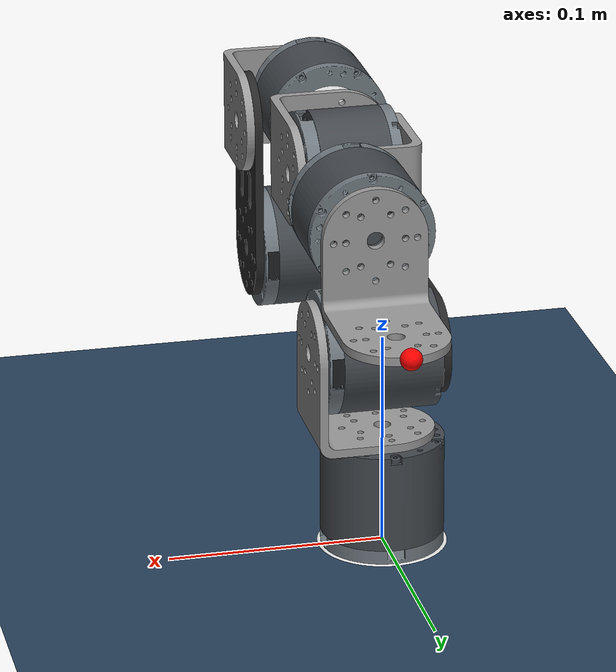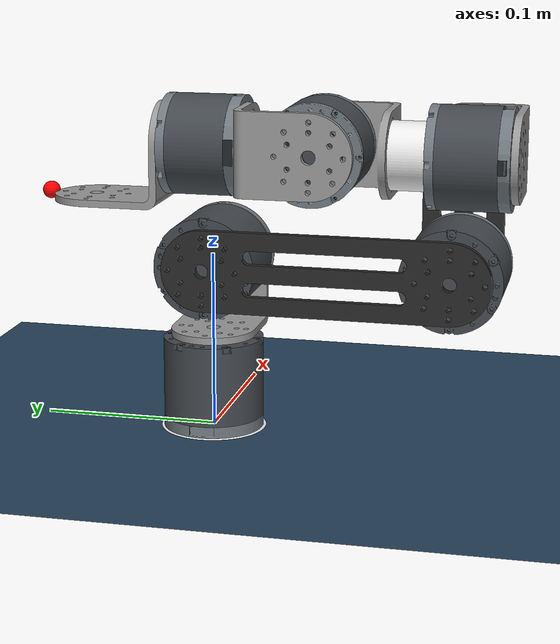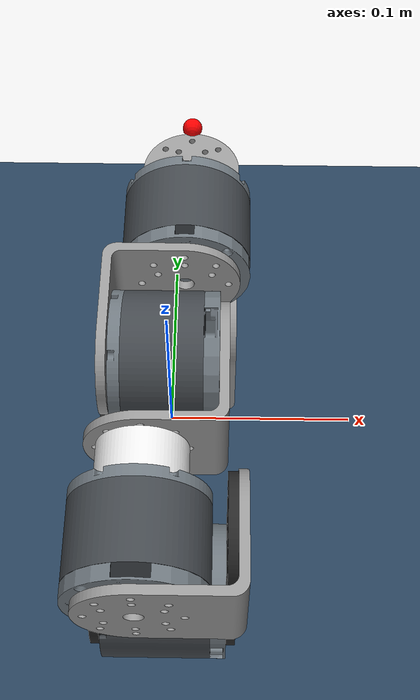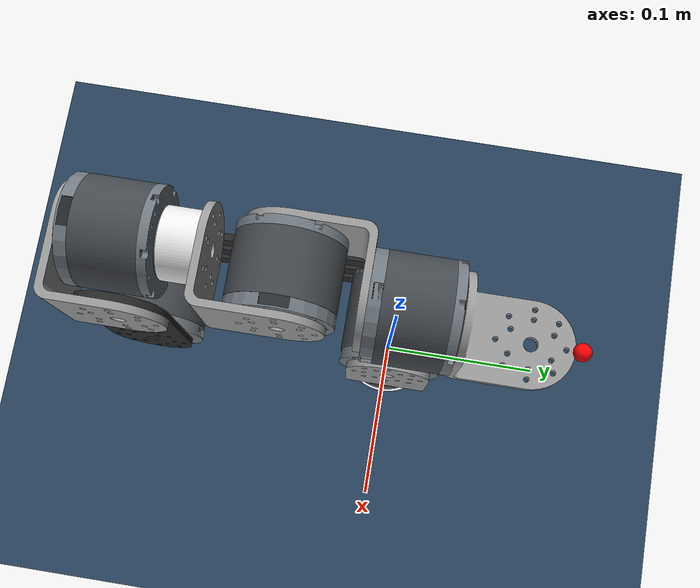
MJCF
<mujoco model="scene">
    <include file="robot.xml" />

    <option gravity="0 0 0"/>

    <visual>
        <headlight diffuse="0.6 0.6 0.6" ambient="0.3 0.3 0.3" specular="0 0 0" />
        <rgba haze="0.15 0.25 0.35 1" />
        <global azimuth="160" elevation="-20" />
    </visual>

    <asset>
        <texture type="skybox" builtin="gradient" rgb1="0.3 0.5 0.7" rgb2="0 0 0" width="512"
            height="3072" />
        <texture type="2d" name="groundplane" builtin="checker" mark="edge" rgb1="0.2 0.3 0.4"
            rgb2="0.1 0.2 0.3"
            markrgb="0.8 0.8 0.8" width="300" height="300" />
        <material name="groundplane" texture="groundplane" texuniform="true" texrepeat="5 5"
            reflectance="0.2" />
    </asset>

    <worldbody>
        <light pos="0 0 3.5" dir="0 0 -1" directional="true" />
        <geom name="floor" size="0 0 0.05" pos="0 0 0" type="plane" material="groundplane" />
    </worldbody>
</mujoco>

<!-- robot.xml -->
<!-- Generated using onshape-to-robot -->
<!-- Onshape https://cad.onshape.com/documents/bf6e0747e0cd899219ac657c/w/82278f0897f383a99388b3fa/e/2e25f6a46f62bf396b7a318e -->
<mujoco model="pydmL20">
  <compiler angle="radian" meshdir="assets" autolimits="true"/>
  <default>
    <default class="pydmL20">
      <joint frictionloss="0.1" armature="0.005"/>
      <position kp="500" dampratio="1"/>
      <default class="visual">
        <geom type="mesh" contype="0" conaffinity="0" group="2"/>
      </default>
      <default class="collision">
        <geom group="3"/>
      </default>
    </default>
  </default>
  <worldbody>
    <body name="target" pos="0 0 0">
      <geom type="sphere" size="0.005" rgba="0 0.8 0 1"/>
    </body>
    <!-- Link broad -->
    <body name="broad" pos="0 0 0" quat="1 0 0 0" childclass="pydmL20">
      <inertial pos="-1.5743e-08 -8.67484e-05 0.0242348" mass="1.04351" fullinertia="0.00076785 0.000766062 0.000896953 -1.45834e-07 -3.03e-10 -1.87157e-06"/>
      <!-- Part dm_4340_motor -->
      <geom type="mesh" class="visual" pos="0 0 0.05325" quat="0.707107 -0.707107 0 0" mesh="dm_4340_motor" material="dm_4340_motor_material"/>
      <geom type="mesh" class="collision" pos="0 0 0.05325" quat="0.707107 -0.707107 0 0" mesh="dm_4340_motor" material="dm_4340_motor_material"/>
      <!-- Part broad -->
      <geom type="mesh" class="visual" pos="-0.0285 -0.0285 -0.004" quat="0.707107 -0 0.707107 -0" mesh="broad" material="broad_material"/>
      <geom type="mesh" class="collision" pos="-0.0285 -0.0285 -0.004" quat="0.707107 -0 0.707107 -0" mesh="broad" material="broad_material"/>
      <!-- Part dm_4340_cover -->
      <geom type="mesh" class="visual" pos="0 0 0.05325" quat="0.707107 -0.707107 0 0" mesh="dm_4340_cover" material="dm_4340_cover_material"/>
      <geom type="mesh" class="collision" pos="0 0 0.05325" quat="0.707107 -0.707107 0 0" mesh="dm_4340_cover" material="dm_4340_cover_material"/>
      <!-- Link l_link -->
      <body name="l_link" pos="0 0 0.0533" quat="0 -0.707107 0.707107 -0">
        <!-- Joint from broad to l_link -->
        <joint axis="0 0 1" name="base" type="hinge" range="-3.141592653589793 3.141592653589793"/>
        <inertial pos="-1.5575e-08 -0.00424509 -0.0387974" mass="1.05474" fullinertia="0.000581624 0.000537958 0.000469188 -3.36e-10 1.45774e-07 3.48355e-05"/>
        <!-- Part l_link -->
        <geom type="mesh" class="visual" pos="-0.0285 -0.0305 -0.004" quat="0.5 -0.5 -0.5 -0.5" mesh="l_link" material="l_link_material"/>
        <geom type="mesh" class="collision" pos="-0.0285 -0.0305 -0.004" quat="0.5 -0.5 -0.5 -0.5" mesh="l_link" material="l_link_material"/>
        <!-- Part dm_4340_motor_2 -->
        <geom type="mesh" class="visual" pos="0 0.02275 -0.0425" quat="0 -1 -0 -0" mesh="dm_4340_motor" material="dm_4340_motor_material"/>
        <geom type="mesh" class="collision" pos="0 0.02275 -0.0425" quat="0 -1 -0 -0" mesh="dm_4340_motor" material="dm_4340_motor_material"/>
        <!-- Part dm_4340_cover_2 -->
        <geom type="mesh" class="visual" pos="0 0.02275 -0.0425" quat="0 -1 -0 -0" mesh="dm_4340_cover" material="dm_4340_cover_material"/>
        <geom type="mesh" class="collision" pos="0 0.02275 -0.0425" quat="0 -1 -0 -0" mesh="dm_4340_cover" material="dm_4340_cover_material"/>
        <!-- Link long_link -->
        <body name="long_link" pos="0 0.0228 -0.0425" quat="0.707107 0.707107 -0 -0">
          <!-- Joint from l_link to long_link -->
          <joint axis="0 0 1" name="shoulder" type="hinge" range="-3.141592653589793 0.0"/>
          <inertial pos="0.0685 -0 -0.002" mass="0.0398304" fullinertia="7.58759e-06 0.000113033 0.000120515 -0 0 0"/>
          <!-- Part long_link -->
          <geom type="mesh" class="visual" pos="0.1655 0.0285 0" quat="0 0 0 -1" mesh="long_link" material="long_link_material"/>
          <geom type="mesh" class="collision" pos="0.1655 0.0285 0" quat="0 0 0 -1" mesh="long_link" material="long_link_material"/>
          <!-- Link dm_4340_motor -->
          <body name="dm_4340_motor" pos="0.137 -0 0" quat="0 -0 1 0">
            <!-- Joint from long_link to dm_4340_motor -->
            <joint axis="0 0 1" name="elbow" type="hinge" range="-3.1415926710415256 0.017453275068210792"/>
            <inertial pos="-0.00412952 -0.0331055 -0.0241223" mass="1.85612" fullinertia="0.00281273 0.000886552 0.00272285 -0.000244665 -1.17356e-05 2.97086e-05"/>
            <!-- Part l_link_2 -->
            <geom type="mesh" class="visual" pos="-0.0305 -0.0935 -0.0573" quat="0.707107 -6.17e-09 0.707107 6.17e-09" mesh="l_link" material="l_link_material"/>
            <geom type="mesh" class="collision" pos="-0.0305 -0.0935 -0.0573" quat="0.707107 -6.17e-09 0.707107 6.17e-09" mesh="l_link" material="l_link_material"/>
            <!-- Part dm_4340_cover_3 -->
            <geom type="mesh" class="visual" pos="-0 0 -5e-05" quat="0.707107 -0.707107 -6.171e-09 6.171e-09" mesh="dm_4340_cover" material="dm_4340_cover_material"/>
            <geom type="mesh" class="collision" pos="-0 0 -5e-05" quat="0.707107 -0.707107 -6.171e-09 6.171e-09" mesh="dm_4340_cover" material="dm_4340_cover_material"/>
            <!-- Part short_link -->
            <geom type="mesh" class="visual" pos="0.0285 -0.0935 -0.0533" quat="0.707107 0 -0 0.707107" mesh="short_link" material="short_link_material"/>
            <geom type="mesh" class="collision" pos="0.0285 -0.0935 -0.0533" quat="0.707107 0 -0 0.707107" mesh="short_link" material="short_link_material"/>
            <!-- Part dm_4310_cover -->
            <geom type="mesh" class="visual" pos="0.015 -0.0650125 -0.0189736" quat="0.5 -0.5 0.5 0.5" mesh="dm_4310_cover" material="dm_4310_cover_material"/>
            <geom type="mesh" class="collision" pos="0.015 -0.0650125 -0.0189736" quat="0.5 -0.5 0.5 0.5" mesh="dm_4310_cover" material="dm_4310_cover_material"/>
            <!-- Part dm_4340_motor_3 -->
            <geom type="mesh" class="visual" pos="-0 0 -5e-05" quat="0.707107 -0.707107 -6.171e-09 6.171e-09" mesh="dm_4340_motor" material="dm_4340_motor_material"/>
            <geom type="mesh" class="collision" pos="-0 0 -5e-05" quat="0.707107 -0.707107 -6.171e-09 6.171e-09" mesh="dm_4340_motor" material="dm_4340_motor_material"/>
            <!-- Part dm_4310_adapter -->
            <geom type="mesh" class="visual" pos="0.015 -0.0650125 -0.0189736" quat="0.5 -0.5 0.5 0.5" mesh="dm_4310_adapter" material="dm_4310_adapter_material"/>
            <geom type="mesh" class="collision" pos="0.015 -0.0650125 -0.0189736" quat="0.5 -0.5 0.5 0.5" mesh="dm_4310_adapter" material="dm_4310_adapter_material"/>
            <!-- Part dm_4310_motor -->
            <geom type="mesh" class="visual" pos="0.015 -0.0650125 -0.0189736" quat="0.5 -0.5 0.5 0.5" mesh="dm_4310_motor" material="dm_4310_motor_material"/>
            <geom type="mesh" class="collision" pos="0.015 -0.0650125 -0.0189736" quat="0.5 -0.5 0.5 0.5" mesh="dm_4310_motor" material="dm_4310_motor_material"/>
            <!-- Link l_link_2 -->
            <body name="l_link_2" pos="0.0155 -0.0650125 -0.0189736" quat="6.17e-09 0.707107 6.17e-09 -0.707107">
              <!-- Joint from dm_4340_motor to l_link_2 -->
              <joint axis="0 0 1" name="wrist_1" type="hinge" range="-3.1415926535892646 3.1415926535903216"/>
              <inertial pos="0.00801772 -9.94832e-06 -0.0568761" mass="0.955991" fullinertia="0.000544026 0.000536297 0.000371349 -2.4498e-08 -9.42344e-06 1.00842e-07"/>
              <!-- Part dm_4310_cover_2 -->
              <geom type="mesh" class="visual" pos="-0.015 -1.24934e-05 -0.0623264" quat="0.5 -0.5 -0.5 -0.5" mesh="dm_4310_cover" material="dm_4310_cover_material"/>
              <geom type="mesh" class="collision" pos="-0.015 -1.24934e-05 -0.0623264" quat="0.5 -0.5 -0.5 -0.5" mesh="dm_4310_cover" material="dm_4310_cover_material"/>
              <!-- Part l_link_3 -->
              <geom type="mesh" class="visual" pos="0.0305 -0.0285 -0.024" quat="0.707107 0 -0.707107 0" mesh="l_link" material="l_link_material"/>
              <geom type="mesh" class="collision" pos="0.0305 -0.0285 -0.024" quat="0.707107 0 -0.707107 0" mesh="l_link" material="l_link_material"/>
              <!-- Part dm_4310_adapter_2 -->
              <geom type="mesh" class="visual" pos="-0.015 -1.24934e-05 -0.0623264" quat="0.5 -0.5 -0.5 -0.5" mesh="dm_4310_adapter" material="dm_4310_adapter_material"/>
              <geom type="mesh" class="collision" pos="-0.015 -1.24934e-05 -0.0623264" quat="0.5 -0.5 -0.5 -0.5" mesh="dm_4310_adapter" material="dm_4310_adapter_material"/>
              <!-- Part link_cylinder -->
              <geom type="mesh" class="visual" pos="-0.0285 0.0305 0" quat="0.5 0.5 0.5 -0.5" mesh="link_cylinder" material="link_cylinder_material"/>
              <geom type="mesh" class="collision" pos="-0.0285 0.0305 0" quat="0.5 0.5 0.5 -0.5" mesh="link_cylinder" material="link_cylinder_material"/>
              <!-- Part dm_4310_motor_2 -->
              <geom type="mesh" class="visual" pos="-0.015 -1.24934e-05 -0.0623264" quat="0.5 -0.5 -0.5 -0.5" mesh="dm_4310_motor" material="dm_4310_motor_material"/>
              <geom type="mesh" class="collision" pos="-0.015 -1.24934e-05 -0.0623264" quat="0.5 -0.5 -0.5 -0.5" mesh="dm_4310_motor" material="dm_4310_motor_material"/>
              <!-- Link l_link_3 -->
              <body name="l_link_3" pos="-0.0155 -1.24934e-05 -0.0623264" quat="0.707107 -0 0.707107 0">
                <!-- Joint from l_link_2 to l_link_3 -->
                <joint axis="0 0 1" name="wrist_2" type="hinge" range="-1.7453292519943562 1.7453292519943029"/>
                <inertial pos="0.0601106 -0.000257348 0.0270729" mass="0.930808" fullinertia="0.000445855 0.000658828 0.000591597 -4.67297e-07 -0.000143417 9.75252e-07"/>
                <!-- Part l_link_4 -->
                <geom type="mesh" class="visual" pos="0.0385 -0.0285 0" quat="1 0 -0 -0" mesh="l_link" material="l_link_material"/>
                <geom type="mesh" class="collision" pos="0.0385 -0.0285 0" quat="1 0 -0 -0" mesh="l_link" material="l_link_material"/>
                <!-- Part dm_4310_motor_3 -->
                <geom type="mesh" class="visual" pos="0.088 -0.000173555 0.0305125" quat="0 -0.707107 0.707107 -0" mesh="dm_4310_motor" material="dm_4310_motor_material"/>
                <geom type="mesh" class="collision" pos="0.088 -0.000173555 0.0305125" quat="0 -0.707107 0.707107 -0" mesh="dm_4310_motor" material="dm_4310_motor_material"/>
                <!-- Part dm_4310_adapter_3 -->
                <geom type="mesh" class="visual" pos="0.088 -0.000173555 0.0305125" quat="0 -0.707107 0.707107 -0" mesh="dm_4310_adapter" material="dm_4310_adapter_material"/>
                <geom type="mesh" class="collision" pos="0.088 -0.000173555 0.0305125" quat="0 -0.707107 0.707107 -0" mesh="dm_4310_adapter" material="dm_4310_adapter_material"/>
                <!-- Part dm_4310_cover_3 -->
                <geom type="mesh" class="visual" pos="0.088 -0.000173555 0.0305125" quat="0 -0.707107 0.707107 -0" mesh="dm_4310_cover" material="dm_4310_cover_material"/>
                <geom type="mesh" class="collision" pos="0.088 -0.000173555 0.0305125" quat="0 -0.707107 0.707107 -0" mesh="dm_4310_cover" material="dm_4310_cover_material"/>
                <!-- Link l_link_4 -->
                <body name="l_link_4" pos="0.0885 -0.000173555 0.0305125" quat="0.707107 -0 -0.707107 0">
                  <site name="ee" pos="0 -0.03 -0.07" size="0.005" rgba="1 0 0 1"/>
                  <!-- Joint from l_link_3 to l_link_4 -->
                  <joint axis="0 0 1" name="wrist_3" type="hinge" range="-3.1415926535897825 3.1415926535898038"/>
                  <inertial pos="-0 -0.0205837 -0.0179579" mass="0.155436" fullinertia="0.000102066 8.75509e-05 7.05877e-05 -0 0 -2.95462e-05"/>
                  <!-- Part l_link_5 -->
                  <geom type="mesh" class="visual" pos="-0.0285 -0.0305 -0.004" quat="0.5 -0.5 -0.5 -0.5" mesh="l_link" material="l_link_material"/>
                  <geom type="mesh" class="collision" pos="-0.0285 -0.0305 -0.004" quat="0.5 -0.5 -0.5 -0.5" mesh="l_link" material="l_link_material"/>
                </body>
              </body>
            </body>
          </body>
        </body>
      </body>
    </body>
  </worldbody>
  <asset>
    <mesh file="dm_4340_motor.stl"/>
    <mesh file="dm_4310_motor.stl"/>
    <mesh file="broad.stl"/>
    <mesh file="dm_4310_adapter.stl"/>
    <mesh file="l_link.stl"/>
    <mesh file="dm_4340_cover.stl"/>
    <mesh file="link_cylinder.stl"/>
    <mesh file="dm_4310_cover.stl"/>
    <mesh file="long_link.stl"/>
    <mesh file="short_link.stl"/>
    <material name="dm_4340_motor_material" rgba="0.262745 0.282353 0.301961 1"/>
    <material name="broad_material" rgba="0.917647 0.917647 0.917647 1"/>
    <material name="dm_4340_cover_material" rgba="0.439216 0.47451 0.501961 1"/>
    <material name="l_link_material" rgba="0.6 0.6 0.6 1"/>
    <material name="long_link_material" rgba="0.156863 0.156863 0.156863 1"/>
    <material name="short_link_material" rgba="0.156863 0.156863 0.156863 1"/>
    <material name="dm_4310_cover_material" rgba="0.439216 0.47451 0.501961 1"/>
    <material name="dm_4310_adapter_material" rgba="0.439216 0.47451 0.501961 1"/>
    <material name="dm_4310_motor_material" rgba="0.262745 0.282353 0.301961 1"/>
    <material name="link_cylinder_material" rgba="0.917647 0.917647 0.917647 1"/>
  </asset>
  <actuator>
    <position class="pydmL20" name="base" joint="base" inheritrange="1"/>
    <position class="pydmL20" name="shoulder" joint="shoulder" inheritrange="1"/>
    <position class="pydmL20" name="elbow" joint="elbow" inheritrange="1"/>
    <position class="pydmL20" name="wrist_1" joint="wrist_1" inheritrange="1"/>
    <position class="pydmL20" name="wrist_2" joint="wrist_2" inheritrange="1"/>
    <position class="pydmL20" name="wrist_3" joint="wrist_3" inheritrange="1"/>
  </actuator>
  <equality/>
</mujoco>
